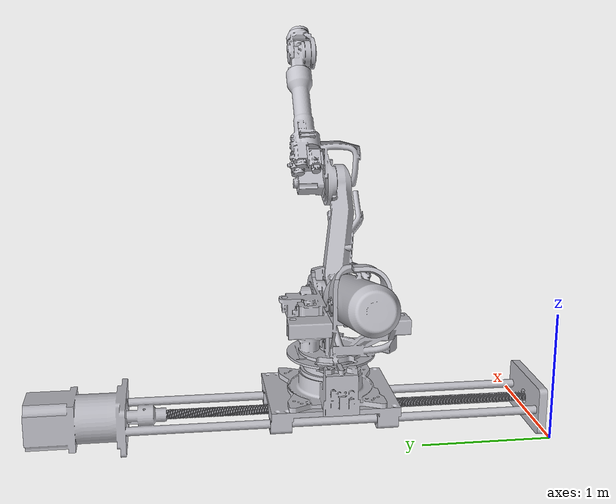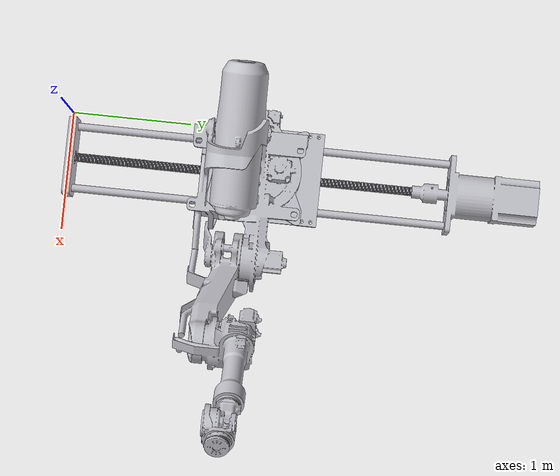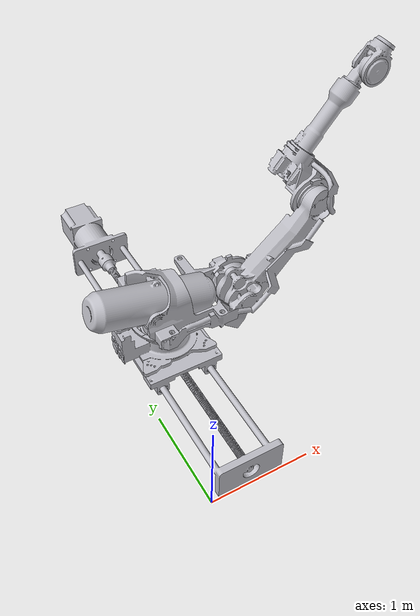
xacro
<?xml version="1.0" ?>
<robot name="Robot" xmlns:xacro="http://www.ros.org/wiki/xacro">

<xacro:include filename="$(find Robot_description)/urdf/materials.xacro" />
<xacro:include filename="$(find Robot_description)/urdf/Robot.trans" />
<xacro:include filename="$(find Robot_description)/urdf/Robot.gazebo" />
<link name="base_link">
  <inertial>
    <origin xyz="0.0 0.0 0.0" rpy="0 0 0"/>
    <mass value="0.0"/>
    <inertia ixx="0.0" iyy="0.0" izz="0.0" ixy="0.0" iyz="0.0" ixz="0.0"/>
  </inertial>
  <visual>
    <origin xyz="0 0 0" rpy="0 0 0"/>
    <geometry>
      <mesh filename="package://Robot_description/meshes/base_link.stl" scale="0.001 0.001 0.001"/>
    </geometry>
    <material name="silver"/>
  </visual>
  <collision>
    <origin xyz="0 0 0" rpy="0 0 0"/>
    <geometry>
      <mesh filename="package://Robot_description/meshes/base_link.stl" scale="0.001 0.001 0.001"/>
    </geometry>
  </collision>
</link>

<joint name="base_link1" type="prismatic">
  <origin xyz="0.4 0.0 0.18" rpy="0 0 0"/>
  <parent link="base_link"/>
  <child link="placa_base_1"/>
  <axis xyz="0.0 -1.0 0.0"/>
  <limit upper="-0.1" lower="-2.24" effort="100" velocity="100"/>
</joint>

<link name="placa_base_1">
  <inertial>
    <origin xyz="0.40877638686219 -1.4600099364657049 -0.6525991128809477" rpy="0 0 0"/>
    <mass value="375.4086793589621"/>
    <inertia ixx="38.020673" iyy="20.791186" izz="56.844586" ixy="-8e-06" iyz="-0.118171" ixz="-0.0"/>
  </inertial>
  <visual>
    <origin xyz="-0.4 -0.08 -0.18" rpy="0 0 0"/>
    <geometry>
      <mesh filename="package://Robot_description/meshes/placa_base_1.stl" scale="0.001 0.001 0.001"/>
    </geometry>
    <material name="silver"/>
  </visual>
  <collision>
    <origin xyz="-0.4 -0.08 -0.18" rpy="0 0 0"/>
    <geometry>
      <mesh filename="package://Robot_description/meshes/placa_base_1.stl" scale="0.001 0.001 0.001"/>
    </geometry>
  </collision>
</link>

<joint name="rig1" type="fixed">
  <origin xyz="0.0 0.475 0.15" rpy="0 0 0"/>
  <parent link="placa_base_1"/>
  <child link="base_r_1"/>
</joint>

<!-- ################ BASE DEL ROBOT ##################-->

<link name="base_r_1">
  <inertial>
    <origin xyz="-0.07435754686676044 -0.0004390727397289851 0.1163853188916053" rpy="0 0 0"/>
    <mass value="570.670009527453"/>
    <inertia ixx="15.007732" iyy="29.800288" izz="35.945755" ixy="-0.008386" iyz="-0.049965" ixz="0.974627"/>
  </inertial>
  <visual>
    <origin xyz="-0.4 -0.57 -0.32" rpy="0 0 0"/>
    <geometry>
      <mesh filename="package://Robot_description/meshes/base_r_1.stl" scale="0.001 0.001 0.001"/>
    </geometry>
    <material name="silver"/>
  </visual>
  <collision>
    <origin xyz="-0.4 -0.57 -0.32" rpy="0 0 0"/>
    <geometry>
      <mesh filename="package://Robot_description/meshes/base_r_1.stl" scale="0.001 0.001 0.001"/>
    </geometry>
  </collision>
</link>

<joint name="link1_link2" type="continuous">
  <origin xyz="0.0 0.0 0.29" rpy="0 0 0"/>
  <parent link="base_r_1"/>
  <child link="s_axis_1"/>
  <axis xyz="0.0 0.0 1.0"/>
</joint>

 <link name="s_axis_1">
  <inertial>
    <origin xyz="0.2465402833824955 -0.04135438603178698 0.20193834883312112" rpy="0 0 0"/>
    <mass value="704.6084530701152"/>
    <inertia ixx="48.865557" iyy="116.94191" izz="129.875404" ixy="-10.669964" iyz="3.782292" ixz="12.845024"/>
  </inertial>
  <visual>
    <origin xyz="-0.4 -0.57 -0.61" rpy="0 0 0"/>
    <geometry>
      <mesh filename="package://Robot_description/meshes/s_axis_1.stl" scale="0.001 0.001 0.001"/>
    </geometry>
    <material name="silver"/>
  </visual>
  <collision>
    <origin xyz="-0.4 -0.57 -0.61" rpy="0 0 0"/>
    <geometry>
      <mesh filename="package://Robot_description/meshes/s_axis_1.stl" scale="0.001 0.001 0.001"/>
    </geometry>
  </collision>
</link>

<joint name="link2_link3" type="revolute">
  <origin xyz="0.74 -0.08 0.15" rpy="0 0 0"/>
  <parent link="s_axis_1"/>
  <child link="l_axis_1"/>
  <axis xyz="7.5e-05 -1.0 0.0"/>
  <limit upper="-0.11" lower="-1.25" effort="100" velocity="100"/>
</joint>

<link name="l_axis_1">
  <inertial>
    <origin xyz="0.027205812442917532 -0.16142313250842483 0.46588585894516765" rpy="0 0 0"/>
    <mass value="552.7971519942739"/>
    <inertia ixx="81.341316" iyy="82.03601" izz="9.751945" ixy="-0.647957" iyz="8.230718" ixz="1.797307"/>
  </inertial>
  <visual>
    <origin xyz="-1.14 -0.49 -0.76" rpy="0 0 0"/>
    <geometry>
      <mesh filename="package://Robot_description/meshes/l_axis_1.stl" scale="0.001 0.001 0.001"/>
    </geometry>
    <material name="silver"/>
  </visual>
  <collision>
    <origin xyz="-1.14 -0.49 -0.76" rpy="0 0 0"/>
    <geometry>
      <mesh filename="package://Robot_description/meshes/l_axis_1.stl" scale="0.001 0.001 0.001"/>
    </geometry>
  </collision>
</link>

<joint name="link3_link4" type="revolute">
  <origin xyz="0 -0.19 1.15" rpy="0 0 0"/>
  <parent link="l_axis_1"/>
  <child link="u_axis_1"/>
  <axis xyz="-7.5e-05 1.0 -0.0"/>
  <limit upper="-0.53" lower="-2.59" effort="100" velocity="100"/>
</joint>

<link name="u_axis_1">
  <inertial>
    <origin xyz="0.2916606047917749 0.2143462434100445 0.14928647205424506" rpy="0 0 0"/>
    <mass value="483.4234110989252"/>
    <inertia ixx="14.609702" iyy="57.2139" izz="54.579399" ixy="-6.234945" iyz="-3.416393" ixz="-11.50764"/>
  </inertial>
  <visual>
    <origin xyz="-1.14 -0.3 -1.9" rpy="0 0 0"/>
    <geometry>
      <mesh filename="package://Robot_description/meshes/u_axis_1.stl" scale="0.001 0.001 0.001"/>
    </geometry>
    <material name="silver"/>
  </visual>
  <collision>
    <origin xyz="-1.14 -0.3 -1.9" rpy="0 0 0"/>
    <geometry>
      <mesh filename="package://Robot_description/meshes/u_axis_1.stl" scale="0.001 0.001 0.001"/>
    </geometry>
  </collision>
</link>

<joint name="link4_link5" type="continuous">
  <origin xyz="1.03 0.27 0.25" rpy="0 0 0"/>
  <parent link="u_axis_1"/>
  <child link="r_axis_1"/>
  <axis xyz="1.0 7.5e-05 -8e-05"/>
</joint>

<link name="r_axis_1">
  <inertial>
    <origin xyz="0.1685563993211039 -0.07412707539147773 -0.0004901924830997828" rpy="0 0 0"/>
    <mass value="8.899946281447061"/>
    <inertia ixx="0.061278" iyy="0.080342" izz="0.089371" ixy="0.018596" iyz="0.000249" ixz="8.4e-05"/>
  </inertial>
  <visual>
    <origin xyz="-2.17 -0.57 -2.16" rpy="0 0 0"/>
    <geometry>
      <mesh filename="package://Robot_description/meshes/r_axis_1.stl" scale="0.001 0.001 0.001"/>
    </geometry>
    <material name="silver"/>
  </visual>
  <collision>
    <origin xyz="-2.17 -0.57 -2.16" rpy="0 0 0"/>
    <geometry>
      <mesh filename="package://Robot_description/meshes/r_axis_1.stl" scale="0.001 0.001 0.001"/>
    </geometry>
  </collision>
</link>

<joint name="link5_link6" type="revolute">
  <origin xyz="0.19 -0.17 0" rpy="0 0 0"/>
  <parent link="r_axis_1"/>
  <child link="b_axis_1"/>
  <axis xyz="7.5e-05 -1.0 -8.2e-05"/>
  <limit upper="1.98" lower="-2.09" effort="100" velocity="100"/>
</joint>

<link name="b_axis_1">
  <inertial>
    <origin xyz="0.10691585220915689 0.13249813747746259 1.7028415353781412e-05" rpy="0 0 0"/>
    <mass value="45.978906535968754"/>
    <inertia ixx="0.382055" iyy="0.490149" izz="0.580024" ixy="0.018167" iyz="0.000188" ixz="-1.8e-05"/>
  </inertial>
  <visual>
    <origin xyz="-2.36 -0.39 -2.16" rpy="0 0 0"/>
    <geometry>
      <mesh filename="package://Robot_description/meshes/b_axis_1.stl" scale="0.001 0.001 0.001"/>
    </geometry>
    <material name="silver"/>
  </visual>
  <collision>
    <origin xyz="-2.36 -0.39 -2.16" rpy="0 0 0"/>
    <geometry>
      <mesh filename="package://Robot_description/meshes/b_axis_1.stl" scale="0.001 0.001 0.001"/>
    </geometry>
  </collision>
</link>

<joint name="link6_link7" type="continuous">
  <origin xyz="0.22 0.13 0.0" rpy="0 0 0"/>
  <parent link="b_axis_1"/>
  <child link="t_axis_1"/>
  <axis xyz="1.0 7.5e-05 -0.000297"/>
</joint>

<link name="t_axis_1">
  <inertial>
    <origin xyz="0.014205681418204996 1.413610909106744e-06 -3.822585659118971e-06" rpy="0 0 0"/>
    <mass value="5.836276011069466"/>
    <inertia ixx="0.025268" iyy="0.013037" izz="0.013093" ixy="1e-06" iyz="0.0" ixz="-4e-06"/>
  </inertial>
  <visual>
    <origin xyz="-2.58 -0.53 -2.16" rpy="0 0 0"/>
    <geometry>
      <mesh filename="package://Robot_description/meshes/t_axis_1.stl" scale="0.001 0.001 0.001"/>
    </geometry>
    <material name="silver"/>
  </visual>
  <collision>
    <origin xyz="-2.58 -0.53 -2.16" rpy="0 0 0"/>
    <geometry>
      <mesh filename="package://Robot_description/meshes/t_axis_1.stl" scale="0.001 0.001 0.001"/>
    </geometry>
  </collision>
</link>

<!-- ################ BALANCER ##################-->

<joint name="rig3" type="fixed">
  <origin xyz="-0.26 0.0 0.47" rpy="0 0 0"/>
  <parent link="s_axis_1"/>
  <child link="balancer_1_1"/>
</joint>

<link name="balancer_1_1">
  <inertial>
    <origin xyz="0.27454396791234575 -1.5743809510766291 -0.7961805409798757" rpy="0 0 0"/>
    <mass value="1052.0941459866974"/>
    <inertia ixx="24.423311" iyy="134.3907" izz="128.357793" ixy="-0.008244" iyz="0.001953" ixz="26.045583"/>
  </inertial>
  <visual>
    <origin xyz="-0.14 -0.56 -1.08" rpy="0 0 0"/>
    <geometry>
      <mesh filename="package://Robot_description/meshes/balancer_1_1.stl" scale="0.001 0.001 0.001"/>
    </geometry>
    <material name="silver"/>
  </visual>
  <collision>
    <origin xyz="-0.14 -0.56 -1.08" rpy="0 0 0"/>
    <geometry>
      <mesh filename="package://Robot_description/meshes/balancer_1_1.stl" scale="0.001 0.001 0.001"/>
    </geometry>
  </collision>
</link>

</robot>
